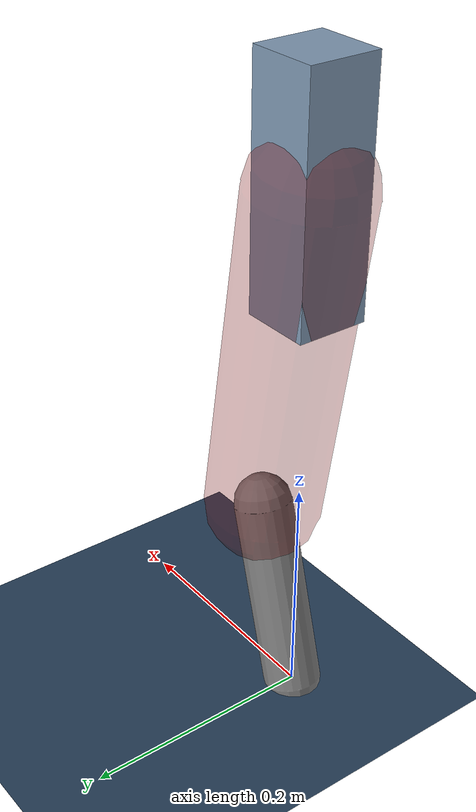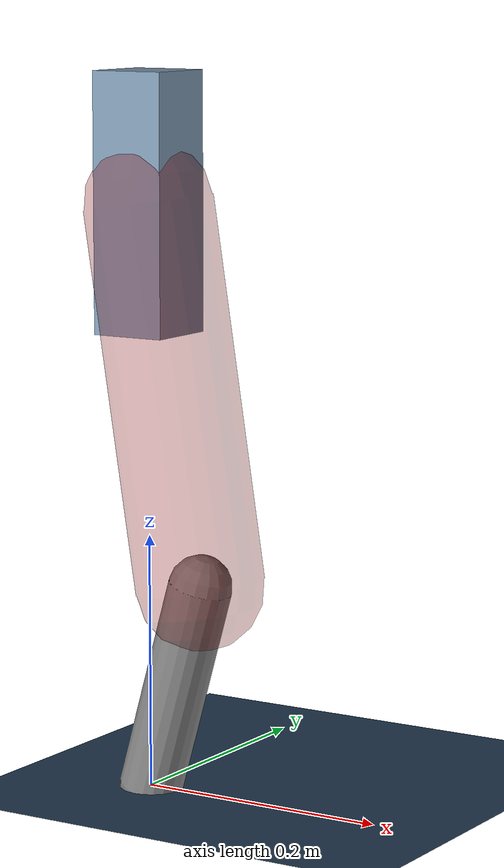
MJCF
<mujoco model="Hopper2D">
	<compiler inertiafromgeom="true" angle="radian" />
	<option timestep="0.001" integrator="implicit" cone="elliptic" solver="Newton" tolerance="1e-10" />

	<default>
		<geom contype="1" conaffinity="1" condim="3" friction="2 0.005 0.0001" solref="0.005 1" />
		<joint limited="true" damping="0.1" />
	</default>

	<asset>
		<texture name="skybox" type="skybox" builtin="gradient" rgb1=".4 .6 .8" rgb2="0 0 0" width="800" height="800" />
		<texture name="grid" type="2d" builtin="checker" rgb1=".1 .2 .3" rgb2=".2 .3 .4" width="300" height="300" mark="edge" markrgb=".2 .3 .4" />
		<material name="ground" texture="grid" texrepeat="1 1" texuniform="true" reflectance="0.1" />
		<material name="leg" rgba="0.5 0.6 0.7 1" />
	</asset>

	<worldbody>

		<geom name="floor" type="plane" size="5 5 0.25" material="ground" />

		<light directional="false" diffuse="0.8 0.8 0.8" specular="0.3 0.3 0.3" pos="0 0 2" dir="0 0 -1" />
		<light mode="targetbodycom" target="base" directional="false" diffuse="0.8 0.8 0.8" specular="0.3 0.3 0.3" pos="0 0 2" dir="0 0 -1" />

		<camera name="fixed" pos="0 -2 1" xyaxes="1 0 0 0 0 1" />
		<camera name="tracking" mode="trackcom" pos="0 -3 1" />

		<body name="root" pos="0 0 0.45803925543803564">
			<joint name="slide_x" type="slide" axis="1 0 0" range="-100 100" />
			<joint name="slide_z" type="slide" axis="0 0 1" range="0 10" />

			<body name="base" pos="0 0 0">
				<geom name="torso" type="box" size="0.03 0.03 0.1" mass="2.084" material="leg" />

				<body name="link1" pos="0 0 0" euler="0 1.4144086984587343 0">
					<joint type="hinge" axis="0 -1 0" pos="0 0 0" name="hinge1" limited="true" range="-3.14 3.14" stiffness="0" damping="0.1" />
					<geom name="thigh" type="capsule" fromto="0 0 0 0.2970152401020326 0 0" size="0.05" rgba="0.5 0 0 0.3" mass="0.9806411482754881" />

					<body name="link2" pos="0.2970152401020326 0 0" euler="0 0.4302903121722343 0">
						<joint type="hinge" axis="0 -1 0" pos="0 0 0" name="hinge2" limited="true" range="-3.14 3.14" stiffness="0" damping="0.1" />
						<geom name="shank" type="capsule" fromto="0 0 0 0.17102401533600303 0 0" size="0.025" mass="0.3761216138024027" />

					</body>
				</body>
			</body>
		</body>
	</worldbody>

	<actuator>
		<motor name="torque1" joint="hinge1" ctrlrange="-34.56443347403363 34.56443347403363" ctrllimited="true" gear="1" />
		<motor name="torque2" joint="hinge2" ctrlrange="-47.2919502726409 47.2919502726409" ctrllimited="true" gear="1" />
	</actuator>
</mujoco>
